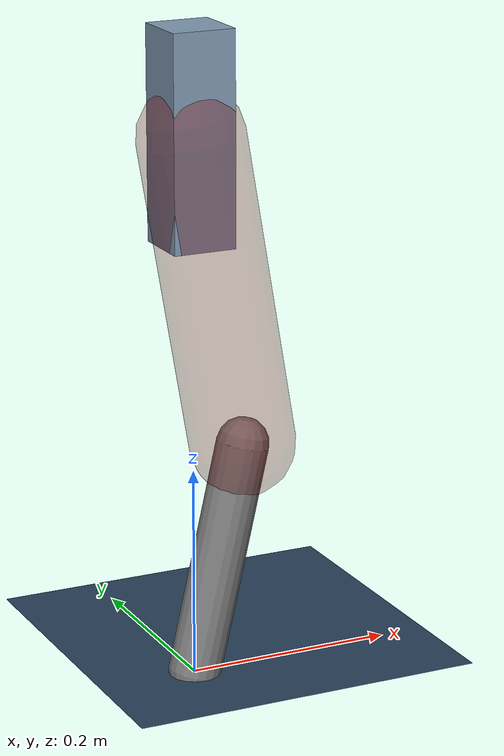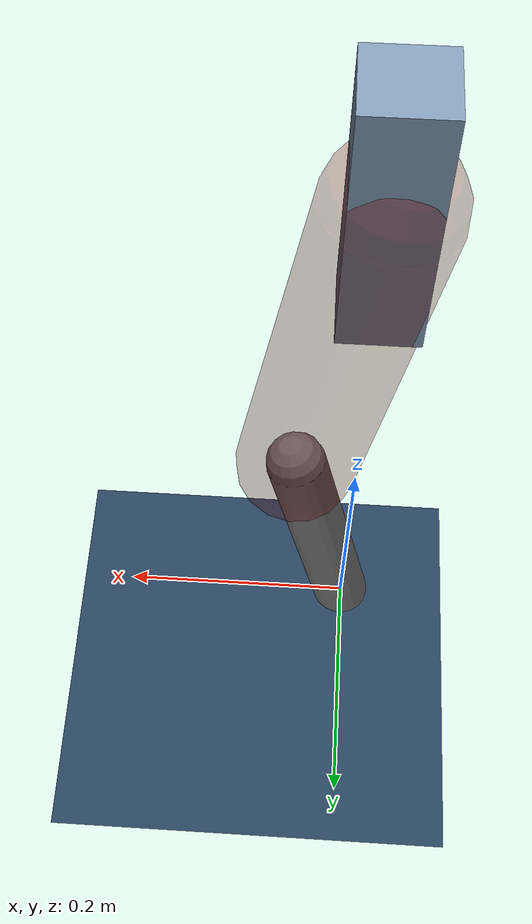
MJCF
<mujoco model="Hopper2D">
	<compiler inertiafromgeom="true" angle="radian" />
	<option timestep="0.001" integrator="implicit" cone="elliptic" solver="Newton" tolerance="1e-10" />

	<default>
		<geom contype="1" conaffinity="1" condim="3" friction="2 0.005 0.0001" solref="0.005 1" />
		<joint limited="true" damping="0.1" />
	</default>

	<asset>
		<texture name="skybox" type="skybox" builtin="gradient" rgb1=".4 .6 .8" rgb2="0 0 0" width="800" height="800" />
		<texture name="grid" type="2d" builtin="checker" rgb1=".1 .2 .3" rgb2=".2 .3 .4" width="300" height="300" mark="edge" markrgb=".2 .3 .4" />
		<material name="ground" texture="grid" texrepeat="1 1" texuniform="true" reflectance="0.1" />
		<material name="leg" rgba="0.5 0.6 0.7 1" />
	</asset>

	<worldbody>

		<geom name="floor" type="plane" size="5 5 0.25" material="ground" />

		<light directional="false" diffuse="0.8 0.8 0.8" specular="0.3 0.3 0.3" pos="0 0 2" dir="0 0 -1" />
		<light mode="targetbodycom" target="base" directional="false" diffuse="0.8 0.8 0.8" specular="0.3 0.3 0.3" pos="0 0 2" dir="0 0 -1" />

		<camera name="fixed" pos="0 -2 1" xyaxes="1 0 0 0 0 1" />
		<camera name="tracking" mode="trackcom" pos="0 -3 1" />

		<body name="root" pos="0 0 0.5164805741521671">
			<joint name="slide_x" type="slide" axis="1 0 0" range="-100 100" />
			<joint name="slide_z" type="slide" axis="0 0 1" range="0 10" />

			<body name="base" pos="0 0 0">
				<geom name="torso" type="box" size="0.03 0.03 0.1" mass="2.328" material="leg" />

				<body name="link1" pos="0 0 0" euler="0 1.40188999164466 0">
					<joint type="hinge" axis="0 -1 0" pos="0 0 0" name="hinge1" limited="true" range="-3.14 3.14" stiffness="0" damping="0.1" />
					<geom name="thigh" type="capsule" fromto="0 0 0 0.30056641043374377 0 0" size="0.05" rgba="0.5 0 0 0.3" mass="0.9902293081711082" />

					<body name="link2" pos="0.30056641043374377 0 0" euler="0 0.3944677805546983 0">
						<joint type="hinge" axis="0 -1 0" pos="0 0 0" name="hinge2" limited="true" range="-3.14 3.14" stiffness="0" damping="0.1" />
						<geom name="shank" type="capsule" fromto="0 0 0 0.22591416371842332 0 0" size="0.025" mass="0.422622747346581" />

					</body>
				</body>
			</body>
		</body>
	</worldbody>

	<actuator>
		<motor name="torque1" joint="hinge1" ctrlrange="-77.9368763237252 77.9368763237252" ctrllimited="true" gear="1" />
		<motor name="torque2" joint="hinge2" ctrlrange="-88.6255510668474 88.6255510668474" ctrllimited="true" gear="1" />
	</actuator>
</mujoco>
